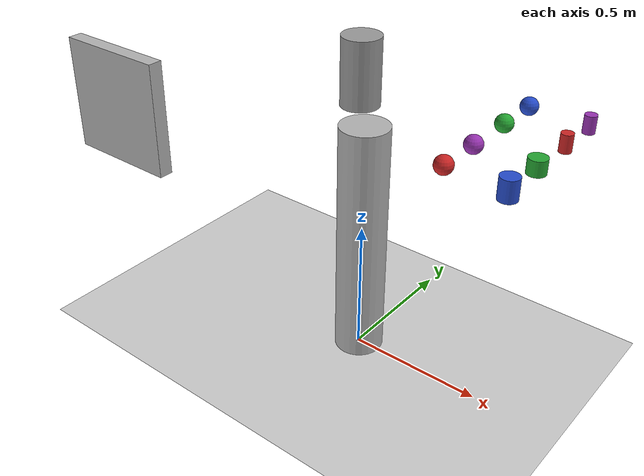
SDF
<sdf version="1.7">
 <world name="default">
  <plugin filename="gz-sim-physics-system" name="gz::sim::systems::Physics"/>
  <plugin filename="gz-sim-user-commands-system" name="gz::sim::systems::UserCommands"/>
  <plugin filename="gz-sim-scene-broadcaster-system" name="gz::sim::systems::SceneBroadcaster"/>
  <plugin filename="gz-sim-sensors-system" name="gz::sim::systems::Sensors">
   <render_engine>ogre2</render_engine>
  </plugin>
  <plugin filename="libgz_link_attacher.so" name="gz_link_attacher::LinkAttacher"/>
  <plugin filename="gz-sim-contact-system" name="gz::sim::systems::Contact"/>
  <light name="sun" type="directional">
   <pose>0 0 10 0 -0 0</pose>
   <diffuse>0.8 0.8 0.8 1</diffuse>
   <specular>0.2 0.2 0.2 1</specular>
   <attenuation>
    <range>1000</range>
    <constant>0.9</constant>
    <linear>0.01</linear>
    <quadratic>0.001</quadratic>
   </attenuation>
   <direction>-0.5 0.1 -0.9</direction>
  </light>
  <model name="ground_plane">
   <static>1</static>
   <link name="link">
    <collision name="collision">
     <geometry><plane><normal>0 0 1</normal><size>100 100</size></plane></geometry>
     <surface>
      <contact><collide_bitmask>65535</collide_bitmask></contact>
      <friction><ode><mu>100</mu><mu2>50</mu2></ode></friction>
     </surface>
    </collision>
    <visual name="visual">
     <cast_shadows>0</cast_shadows>
     <geometry><plane><normal>0 0 1</normal><size>100 100</size></plane></geometry>
     <material>
      <script><uri>file://media/materials/scripts/gazebo.material</uri><name>Gazebo/Grey</name></script>
     </material>
    </visual>
   </link>
  </model>
  <gravity>0 0 -9.8</gravity>
  <magnetic_field>6e-06 2.3e-05 -4.2e-05</magnetic_field>
  <atmosphere type="adiabatic"/>
  <physics name="default_physics" default="0" type="ode">
   <max_step_size>0.001</max_step_size>
   <real_time_factor>1</real_time_factor>
   <real_time_update_rate>1000</real_time_update_rate>
  </physics>
  <scene><ambient>0.4 0.4 0.4 1</ambient><background>0.7 0.7 0.7 1</background><shadows>1</shadows></scene>
  <spherical_coordinates>
   <surface_model>EARTH_WGS84</surface_model>
   <latitude_deg>0</latitude_deg>
   <longitude_deg>0</longitude_deg>
   <elevation>0</elevation>
   <heading_deg>0</heading_deg>
  </spherical_coordinates>
  <model name="unit_box">
   <pose>-0.7 -0.435456 0.927284 0 0 0</pose>
   <link name="link">
    <inertial>
     <mass>1</mass>
     <inertia>
      <ixx>0.166667</ixx>
      <ixy>0</ixy>
      <ixz>0</ixz>
      <iyy>0.166667</iyy>
      <iyz>0</iyz>
      <izz>0.166667</izz>
     </inertia>
    </inertial>
    <collision name="collision"><geometry><box><size>0.4 0.05 0.04</size></box></geometry></collision>
    <visual name="visual">
     <geometry><box><size>0.4 0.05 0.4</size></box></geometry>
     <material>
      <ambient>0.7 0.7 0.7 1</ambient>
      <diffuse>0.7 0.7 0.7 1</diffuse>
      <specular>0.1 0.1 0.1 1</specular>
     </material>
    </visual>
   </link>
   <static>1</static>
  </model>
  <model name="unit_cylinder">
   <pose>-0.3 0.38 0.897305 0 0 0</pose>
   <link name="link">
    <inertial>
     <mass>1</mass>
     <inertia><ixx>0.145833</ixx><ixy>0</ixy><ixz>0</ixz><iyy>0.145833</iyy><iyz>0</iyz><izz>0.125</izz></inertia>
    </inertial>
    <collision name="collision">
     <geometry><cylinder><radius>0.08</radius><length>0.28</length></cylinder></geometry>
    </collision>
    <visual name="visual">
     <geometry><cylinder><radius>0.08</radius><length>0.28</length></cylinder></geometry>
     <material>
      <script><name>Gazebo/Grey</name><uri>file://media/materials/scripts/gazebo.material</uri></script>
     </material>
    </visual>
   </link>
   <static>1</static>
  </model>
  <model name="blue_sphere">
   <link name="link">
    <inertial>
     <mass>0.01</mass>
     <inertia><ixx>0</ixx><ixy>0</ixy><ixz>0</ixz><iyy>0</iyy><iyz>0</iyz><izz>0</izz></inertia>
    </inertial>
    <collision name="blue_sphere_collision">
     <geometry><sphere><radius>0.03</radius></sphere></geometry>
    </collision>
    <visual name="blue_sphere_visual">
     <geometry><sphere><radius>0.03</radius></sphere></geometry>
     <material>
      <script><name>Gazebo/Blue</name><uri>file://media/materials/scripts/gazebo.material</uri></script>
     </material>
    </visual>
   </link>
   <pose>0.45 0.25 1.01 0 -0 0</pose>
  </model>
  <model name="red_sphere">
   <link name="link">
    <inertial>
     <mass>0.01</mass>
     <inertia><ixx>0</ixx><ixy>0</ixy><ixz>0</ixz><iyy>0</iyy><iyz>0</iyz><izz>0</izz></inertia>
    </inertial>
    <collision name="red_sphere_collision"><geometry><sphere><radius>0.03</radius></sphere></geometry></collision>
    <visual name="red_sphere_visual">
     <geometry><sphere><radius>0.03</radius></sphere></geometry>
     <material>
      <script><name>Gazebo/Red</name><uri>file://media/materials/scripts/gazebo.material</uri></script>
     </material>
    </visual>
   </link>
   <pose>0.45 -0.25 1.01 0 -0 0</pose>
  </model>
  <model name="green_sphere">
   <link name="link">
    <inertial>
     <mass>0.01</mass>
     <inertia><ixx>0</ixx><ixy>0</ixy><ixz>0</ixz><iyy>0</iyy><iyz>0</iyz><izz>0</izz></inertia>
    </inertial>
    <collision name="green_sphere_collision">
     <geometry><sphere><radius>0.03</radius></sphere></geometry>
    </collision>
    <visual name="green_sphere_visual">
     <geometry><sphere><radius>0.03</radius></sphere></geometry>
     <material>
      <script><name>Gazebo/Green</name><uri>file://media/materials/scripts/gazebo.material</uri></script>
     </material>
    </visual>
   </link>
   <pose>0.45 0.09 1.01 0 -0 0</pose>
  </model>
  <model name="purple_sphere">
   <link name="link">
    <inertial>
     <mass>0.01</mass>
     <inertia><ixx>0</ixx><ixy>0</ixy><ixz>0</ixz><iyy>0</iyy><iyz>0</iyz><izz>0</izz></inertia>
    </inertial>
    <collision name="purple_sphere_collision">
     <geometry><sphere><radius>0.03</radius></sphere></geometry>
    </collision>
    <visual name="purple_sphere_visual">
     <geometry><sphere><radius>0.03</radius></sphere></geometry>
     <material>
      <script><name>Gazebo/Purple</name><uri>file://media/materials/scripts/gazebo.material</uri></script>
     </material>
    </visual>
   </link>
   <pose>0.45 -0.09 1.01 0 -0 0</pose>
  </model>
  <model name="green_cylinder">
   <link name="link">
    <inertial>
     <mass>0.01</mass>
     <inertia><ixx>0</ixx><ixy>0</ixy><ixz>0</ixz><iyy>0</iyy><iyz>0</iyz><izz>0</izz></inertia>
    </inertial>
    <collision name="green_cylinder_collision">
     <geometry><cylinder><radius>0.03</radius><length>0.05</length></cylinder></geometry>
    </collision>
    <visual name="green_cylinder_visual">
     <geometry><cylinder><radius>0.03</radius><length>0.05</length></cylinder></geometry>
     <material>
      <script><name>Gazebo/Green</name><uri>file://media/materials/scripts/gazebo.material</uri></script>
     </material>
    </visual>
   </link>
   <pose>0.65 -0.09 1.01 0 -0 0</pose>
  </model>
  <model name="purple_cylinder">
   <link name="link">
    <inertial>
     <mass>0.01</mass>
     <inertia><ixx>0</ixx><ixy>0</ixy><ixz>0</ixz><iyy>0</iyy><iyz>0</iyz><izz>0</izz></inertia>
    </inertial>
    <collision name="purple_cylinder_collision">
     <geometry><cylinder><radius>0.02</radius><length>0.06</length></cylinder></geometry>
    </collision>
    <visual name="purple_cylinder_visual">
     <geometry><cylinder><radius>0.02</radius><length>0.06</length></cylinder></geometry>
     <material>
      <script><name>Gazebo/Purple</name><uri>file://media/materials/scripts/gazebo.material</uri></script>
     </material>
    </visual>
   </link>
   <pose>0.65 0.25 1.01 0 -0 0</pose>
  </model>
  <model name="red_cylinder">
   <link name="link">
    <inertial>
     <mass>0.01</mass>
     <inertia><ixx>0</ixx><ixy>0</ixy><ixz>0</ixz><iyy>0</iyy><iyz>0</iyz><izz>0</izz></inertia>
    </inertial>
    <collision name="red_cylinder_collision">
     <geometry><cylinder><radius>0.02</radius><length>0.06</length></cylinder></geometry>
    </collision>
    <visual name="red_cylinder_visual">
     <geometry><cylinder><radius>0.02</radius><length>0.06</length></cylinder></geometry>
     <material>
      <script><name>Gazebo/Red</name><uri>file://media/materials/scripts/gazebo.material</uri></script>
     </material>
    </visual>
   </link>
   <pose>0.65 0.09 1.01 0 -0 0</pose>
  </model>
  <model name="robotbase">
   <static>true</static>
   <link name="link">
    <pose>0 0 0.45 0 0 0</pose>
    <visual name="visual">
     <geometry><cylinder><radius>0.09</radius><length>0.9</length></cylinder></geometry>
     <material>
      <ambient>0.3 0.3 0.3 1</ambient>
      <diffuse>0.7 0.7 0.7 1</diffuse>
      <specular>0.01 0.01 0.01 1</specular>
     </material>
    </visual>
    <collision name="collision">
     <geometry><cylinder><radius>0.09</radius><length>0.9</length></cylinder></geometry>
    </collision>
   </link>
  </model>
  <model name="blue_cylinder">
   <link name="blue_cylinder">
    <inertial>
     <mass>0.01</mass>
     <inertia><ixx>0</ixx><ixy>0</ixy><ixz>0</ixz><iyy>0</iyy><iyz>0</iyz><izz>0</izz></inertia>
    </inertial>
    <collision name="blue_cylinder_collision">
     <geometry><cylinder><radius>0.03</radius><length>0.07</length></cylinder></geometry>
    </collision>
    <visual name="blue_cylinder_visual">
     <geometry><cylinder><radius>0.03</radius><length>0.07</length></cylinder></geometry>
     <material>
      <script><name>Gazebo/Blue</name><uri>file://media/materials/scripts/gazebo.material</uri></script>
     </material>
    </visual>
   </link>
   <pose>0.65 -0.25 1.01 0 -0 0</pose>
  </model>
 </world>
</sdf>
